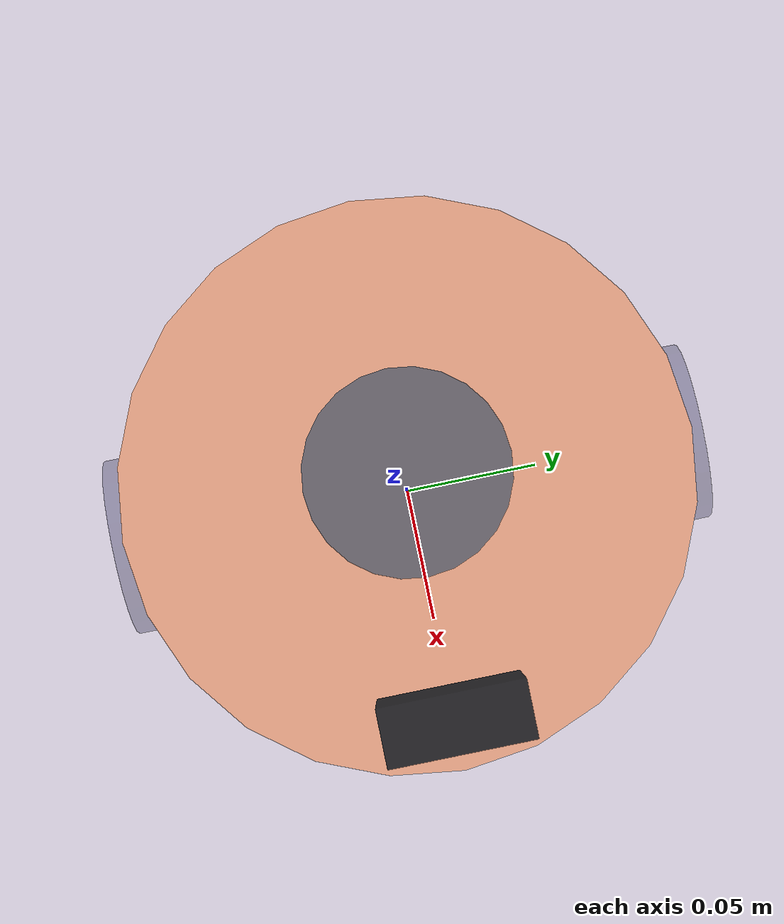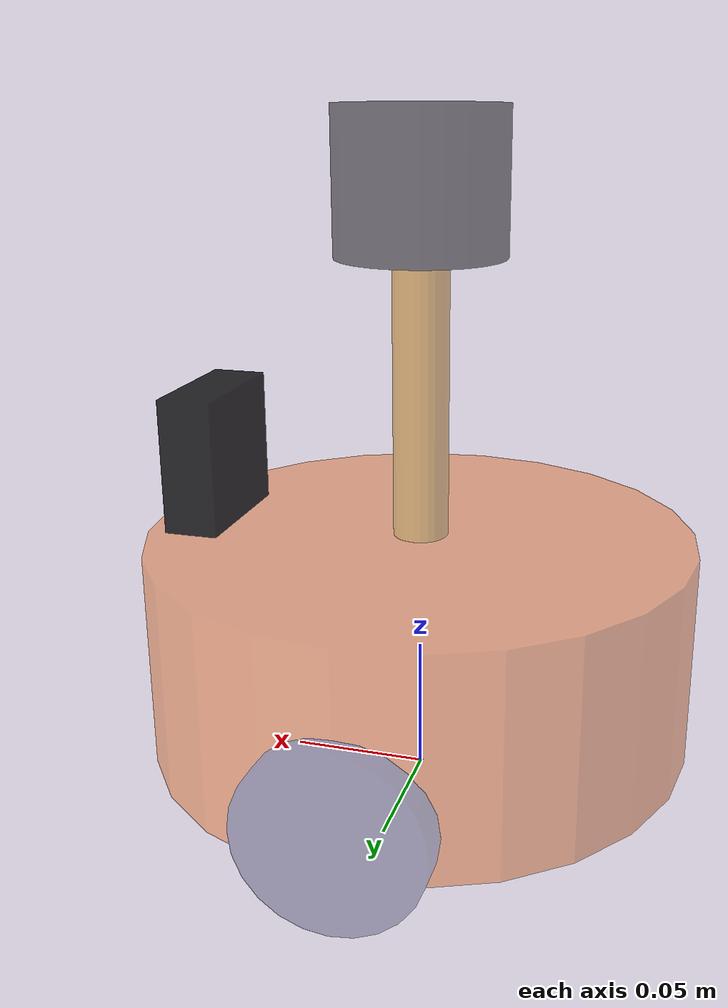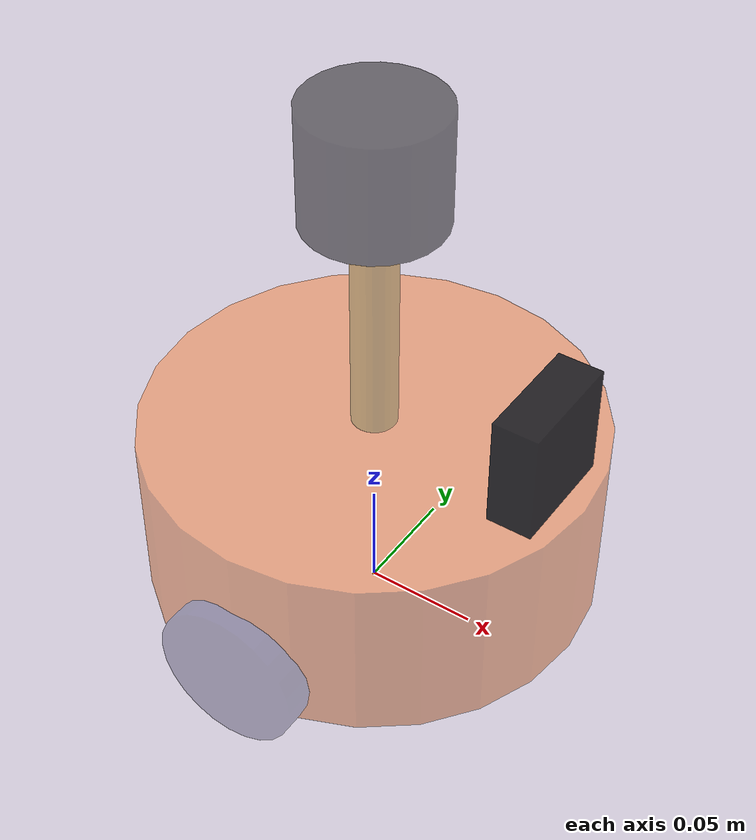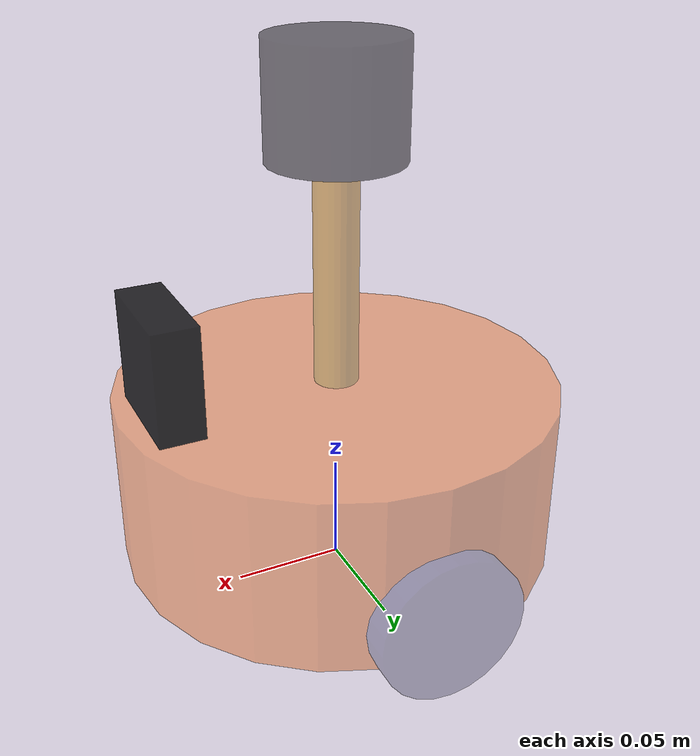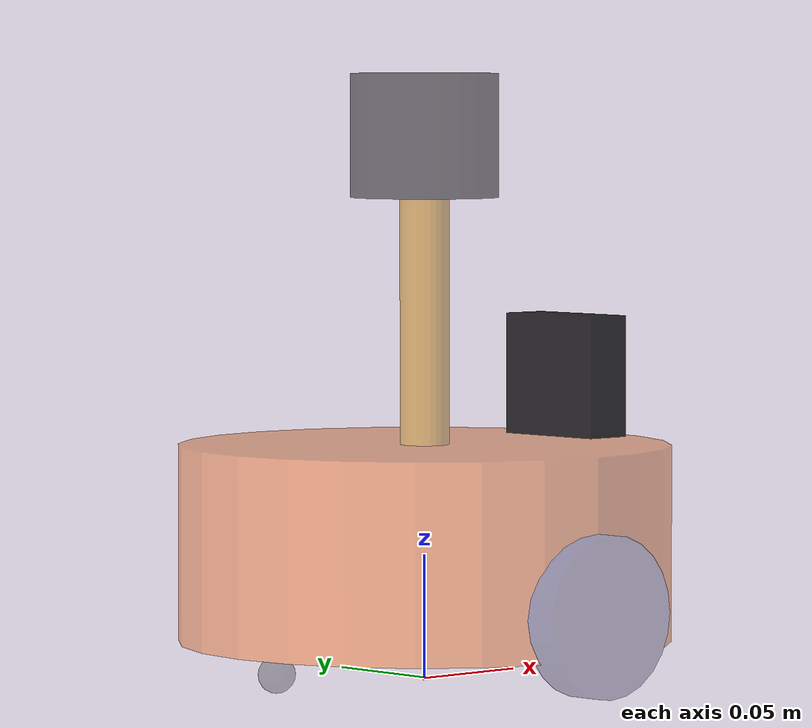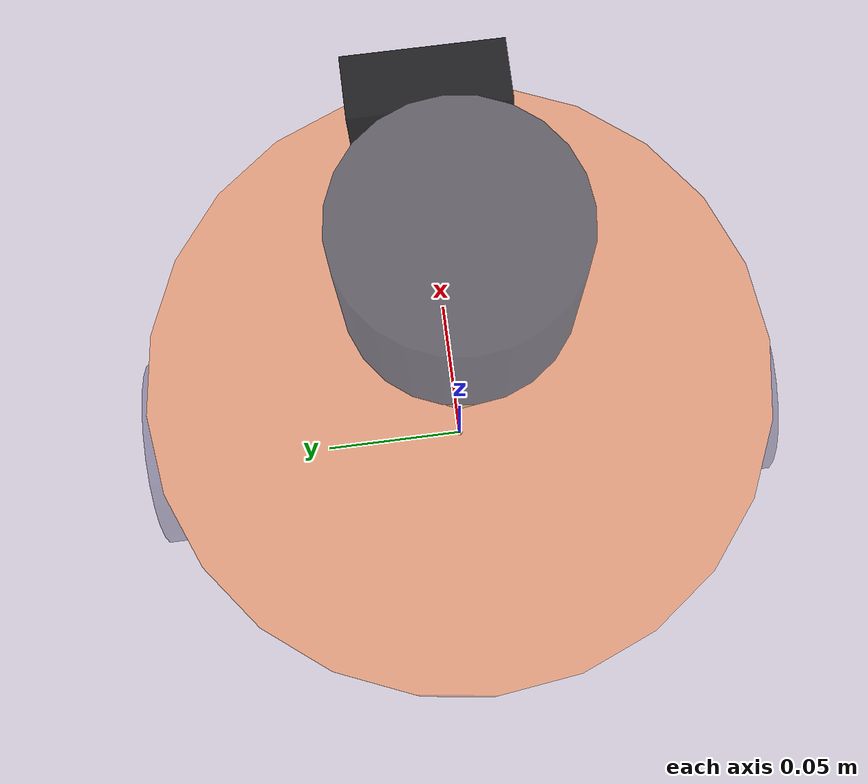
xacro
<robot name = "mycarbot" xmlns:xacro = "http://wiki.ros.org/xacro" >
<!-- the file of xacro including chassis,camera and lidar  -->
    <xacro:include filename = "demo01_mycarbot.urdf.xacro" />
    <xacro:include filename = "demo01_car_camera.urdf.xacro" />
    <xacro:include filename = "demo01_car_radar.urdf.xacro" />
</robot>

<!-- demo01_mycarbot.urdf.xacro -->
<robot name = "mycarbot" xmlns:xacro = "http://wiki.ros.org/xacro" >

    <xacro:property name = "footprint_radius" value = "0.001" />
    <!-- 1. Add base_footprint-->
    <link name = "base_footprint">
        <visual>
            <geometry>
                <sphere radius="${footprint_radius}"/>
            </geometry>
        </visual>
    </link>

    <xacro:property name = "base_radius" value = "0.1" />
    <xacro:property name = "base_length" value = "0.08" />
    <xacro:property name = "distance2ground" value = "0.015" />
    <xacro:property name = "base_joint_2" value = "${base_length / 2  + distance2ground}" />
    <!-- 2.Add chassis -->
    <!--
        geometry : cylinder
        radius : 0.1m
        height : 0.08m
        distance to ground : 0.015m
     -->
    <!-- 2.1 link -->
    <link name = "base_link">
        <visual>
            <geometry>
                <cylinder radius = "${base_radius}" length = "${base_length}" />
            </geometry>

            <origin xyz = "0 0 0" rpy = "0 0 0"/>

            <material name = "baselink_color">
                <color rgba = "1.0 0.5 0.2 0.5" />
            </material>
        </visual>
    </link>

    <!-- 2.2 joint -->
    <joint name = "link2footprint" type = "fixed">
        <parent link = "base_footprint" />
        <child link = "base_link"/>
        <!-- set of z axis = height / 2 + distance2ground -->
        <origin xyz = "0 0 ${base_length / 2 + distance2ground}" rpy = "0 0 0"/>
    </joint>

    <xacro:property name = "wheel_radius" value = "0.0325" />
    <xacro:property name = "wheel_length" value = "0.015" />
    <xacro:property name = "PI" value = "3.1415927" />
    <xacro:property name = "base_radius" value = "0.1" />
    <!-- Attention -->
    <xacro:property name = "wheel_joint_z" value = "${(-1) * (base_length / 2 + distance2ground - wheel_radius)}" />

    <xacro:macro name = "wheel_func" params = "wheel_name flag" >
    <!-- 3.Add driven wheels -->
    <!--
        geometry : cylinder
        radius : 0.035m
        length : 0.015m
     -->
     <!-- 3.1 link -->
    <link name = "${wheel_name}_wheel">
        <visual>
            <geometry>
                <cylinder radius = "${wheel_radius}" length = "${wheel_length}" />
            </geometry>

            <origin xyz = "0 0 0" rpy = "${PI / 2} 0 0"/>

            <material name = "wheel_color">
                <color rgba = "0 0 0.2 0.3" />
            </material>
        </visual>
    </link>

     <!-- 3.2 joint -->
    <joint name = "${wheel_name}2link" type = "continuous">
        <parent link = "base_link" />
        <child link = "${wheel_name}_wheel"/>
        <!--
            x = 0
            y = radius
            z = height / 2 + distance2ground - radius

         -->
        <origin xyz = "0 ${base_radius * flag} ${wheel_joint_z}" rpy = "0 0 0"/>
        <axis xyz = "0 1 0" />
    </joint>

    </xacro:macro>
    <xacro:wheel_func wheel_name = "left" flag = "1" />
    <xacro:wheel_func wheel_name = "right" flag = "-1" />

    <xacro:property name = "small_wheel_radius" value = "0.0075" />
    <xacro:property name = "small_joint_x" value = "0.08" />
    <xacro:property name = "small_joint_z" value = "${(-1)*(base_length / 2 + distance2ground - small_wheel_radius)}" />

    <xacro:macro name = "small_wheel_func" params = "small_wheel_name flag" >
    <!-- 4.Add universal wheels  -->
    <!--
        geometry : sphere
        radius : 0.0075m
     -->
     <!-- 4.1 link -->
    <link name = "${small_wheel_name}_wheel">
        <visual>
            <geometry>
                <sphere radius = "${small_wheel_radius}" />
            </geometry>

            <origin xyz = "0 0 0" rpy = "0 0 0"/>

            <material name = "wheel_color">
                <color rgba = "0 0 0 0.3" />
            </material>
        </visual>
    </link>

     <!-- 4.2 joint -->
     <joint name = "${small_wheel_name}2link" type = "continuous">
        <parent link = "base_link" />
        <child link = "${small_wheel_name}_wheel"/>
        <!--
            x = 0
            y = radius
            z = height / 2 + distance2ground - radius

         -->
        <origin xyz = "${flag * small_joint_x} 0 ${small_joint_z}" rpy = "0 0 0"/>
        <axis xyz = "0 1 0" />
    </joint>

    </xacro:macro>
    <xacro:small_wheel_func small_wheel_name = "front" flag = "1" />
    <xacro:small_wheel_func small_wheel_name = "back" flag = "-1" />

</robot>

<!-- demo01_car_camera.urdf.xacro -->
<robot name = "mycarbot" xmlns:xacro = "http://wiki.ros.org/xacro" >
<!-- the file of xacro including camera  -->
<!-- 1.param -->
<!--
    param:
        link : thickness,width,height
        joint : x,y,z
 -->

<!-- 2.set link and joint -->
<xacro:property  name = "camera_length" value = "0.02" />    <!--thickness(x)-->
<xacro:property  name = "camera_width" value = "0.05" />    <!--thickness(y)-->
<xacro:property  name = "camera_height" value = "0.05" />    <!--thickness(z)-->
<xacro:property  name = "joint_camera_x" value = "0.08" />
<xacro:property  name = "joint_camera_y" value = "0" />
<xacro:property  name = "joint_camera_z" value = "${base_length / 2 + camera_height / 2}" />

<link name = "camera">
    <visual>
        <geometry>
            <box size = "${camera_length} ${camera_width} ${camera_height}" />
        </geometry>

        <material name = "black">
            <color rgba = "0 0 0 0.8" />
        </material>
    </visual>
</link>

<joint name = "camera2base" type = "fixed">
    <parent link = "base_link"/>
    <child link = "camera" />
    <origin xyz = "${joint_camera_x} ${joint_camera_y} ${joint_camera_z}" rpy = "0 0 0" />
</joint>
</robot>

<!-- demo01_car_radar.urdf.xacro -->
<robot name = "mycarbot" xmlns:xacro = "http://wiki.ros.org/xacro" >

<!-- the file of xacro including lidar  -->

    <!--
        param : bracket lidar
        size : radius height
        offset : x,y,z
    -->

    <xacro:property name = "bracket_radius" value = "0.01" />
    <xacro:property name = "bracket_length" value = "0.15" />
    <xacro:property name = "lidar_radius" value = "0.03" />
    <xacro:property name = "lidar_length" value = "0.05" />

    <xacro:property name = "joint_bracket_x" value = "0" />
    <xacro:property name = "joint_bracket_y" value = "0" />
    <!-- z = body_height / 2 + bracket_height / 2-->
    <xacro:property name = "joint_bracket_z" value = "${base_length / 2 + lidar_length / 2}" />

    <xacro:property name = "joint_lidar_x" value = "0" />
    <xacro:property name = "joint_lidar_y" value = "0" />
    <!-- z = bracket_height / 2 + lidar_height / 2 -->
    <xacro:property name = "joint_lidar_z" value = "${bracket_length / 2 + lidar_length / 2}" />

    <!-- 1.bracket -->
    <link name = "bracket">
        <visual>
            <geometry>
                <cylinder radius = "${bracket_radius}" length = "${bracket_length}" />
            </geometry>
            <material name = "yellow">
                <color rgba = "0.8 0.5 0.0 0.5" />
            </material>
        </visual>
    </link>

    <joint name = "bracket2base" type = "fixed">
        <parent link = "base_link" />
        <child link = "bracket" />
        <origin xyz = "${joint_bracket_x} ${joint_bracket_y} ${joint_bracket_z}" rpy = "0 0 0" />
    </joint>

    <!-- 2.lidar -->
    <link name = "lidar">
        <visual>
            <geometry>
                <cylinder radius = "${lidar_radius}" length = "${lidar_length}" />
            </geometry>
            <material name = "black">
                <color rgba = "0 0 0 0.5" />
            </material>
        </visual>
    </link>

    <joint name = "lidar2bracket" type = "fixed">
        <parent link = "bracket" />
        <child link = "lidar" />
        <origin xyz = "${joint_lidar_x} ${joint_lidar_y} ${joint_lidar_z}" rpy = "0 0 0" />
    </joint>

</robot>
